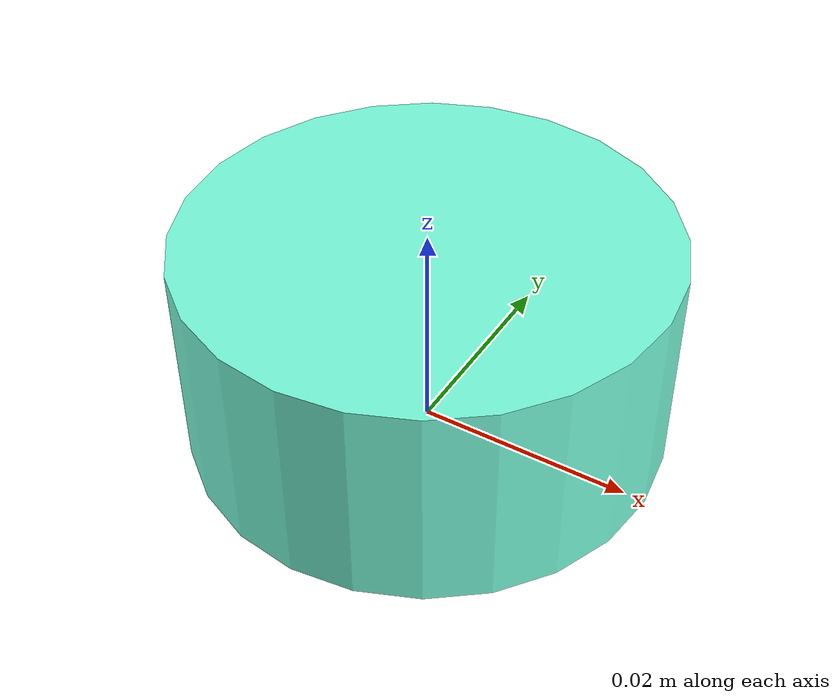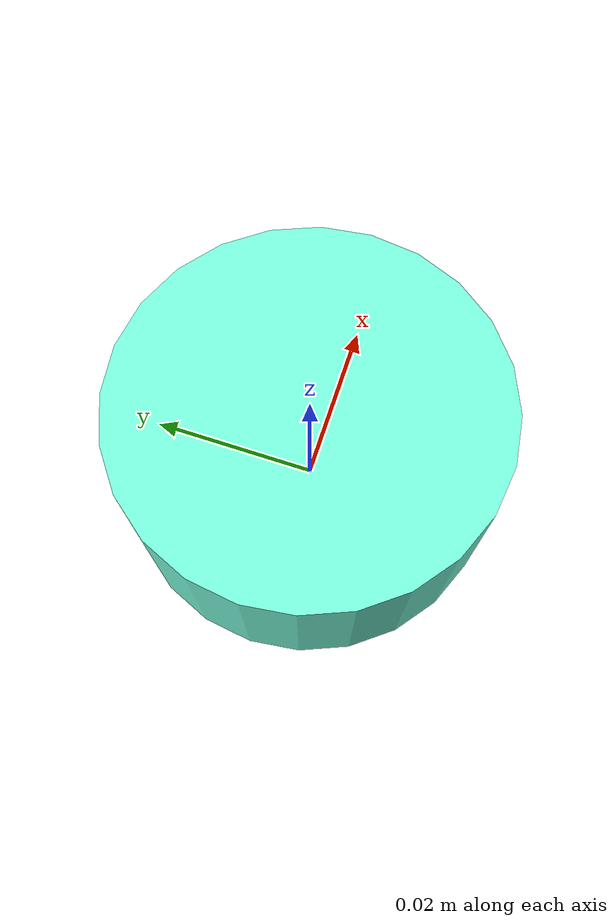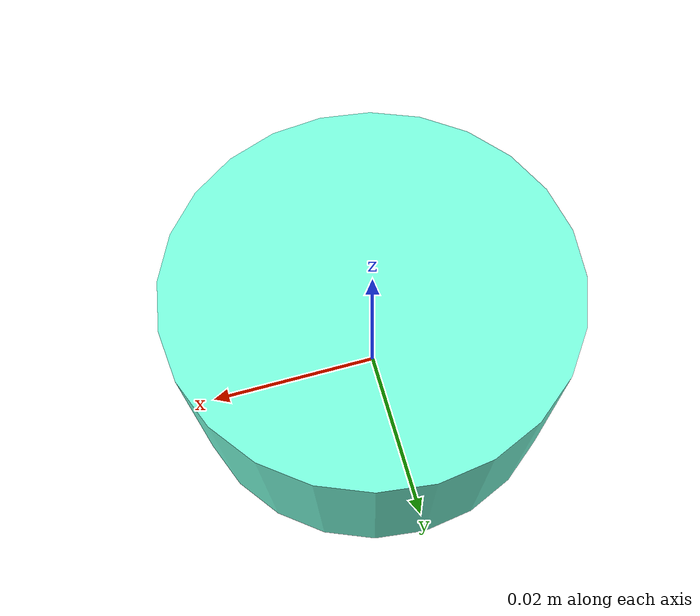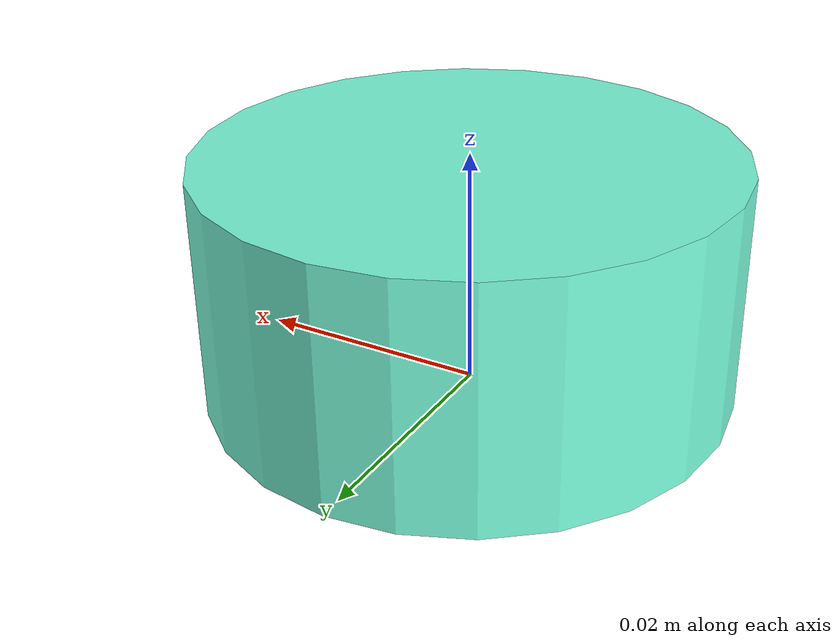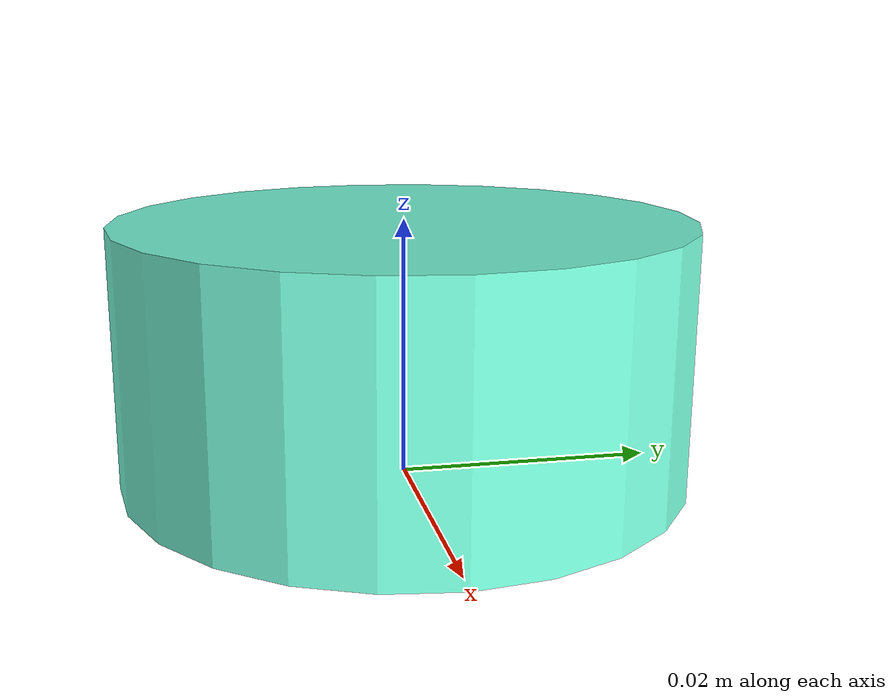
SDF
<sdf version="1.7">
  <model name="disc_22">
    <link name="base_link">
      <inertial>
        <mass>0.05</mass>
        <inertia>
          <ixx>7.91e-06</ixx>
          <ixy>0</ixy>
          <ixz>0</ixz>
          <iyy>7.91e-06</iyy>
          <iyz>0</iyz>
          <izz>1.56e-05</izz>
        </inertia>
        <pose>0 0 0.0025 0 0 0</pose>
      </inertial>
      <pose>0 0 0 0 0 0</pose>
      <visual name="visual">
        <pose>0 0 0.01 0 0 0</pose>
        <geometry>
            <cylinder>
              <radius>0.022</radius>
              <length>0.02</length>
            </cylinder>
        </geometry>
        <material>
          <diffuse>0.47288246141115253 0.9895366072345039 0.8614044912825802 1</diffuse>
        </material>
      </visual>
      <collision name="collision">
        <pose>0 0 0.01 0 0 0</pose>
        <geometry>
            <cylinder>
              <radius>0.022</radius>
              <length>0.02</length>
            </cylinder>
        </geometry>
      </collision>
      <collision name="ball1">
        <pose>0.015556349186104044 0.015556349186104044 0 0 0 0</pose>
        <geometry>
          <sphere>
            <radius>1e-07</radius>
          </sphere>
        </geometry>
      </collision>
      <collision name="ball2">
        <pose>-0.015556349186104044 0.015556349186104044 0 0 0 0</pose>
        <geometry>
          <sphere>
            <radius>1e-07</radius>
          </sphere>
        </geometry>
      </collision>
      <collision name="ball3">
        <pose>0.015556349186104044 -0.015556349186104044 0 0 0 0</pose>
        <geometry>
          <sphere>
            <radius>1e-07</radius>
          </sphere>
        </geometry>
      </collision>
      <collision name="ball4">
        <pose>-0.015556349186104044 -0.015556349186104044 0 0 0 0</pose>
        <geometry>
          <sphere>
            <radius>1e-07</radius>
          </sphere>
        </geometry>
      </collision>
    </link>
  </model>
</sdf>
